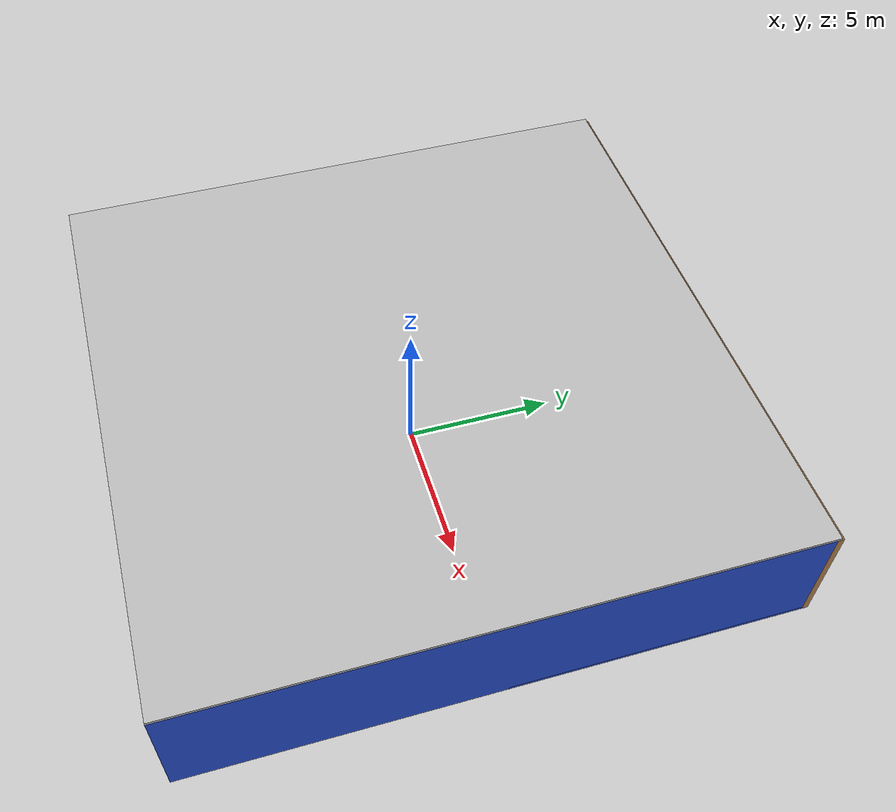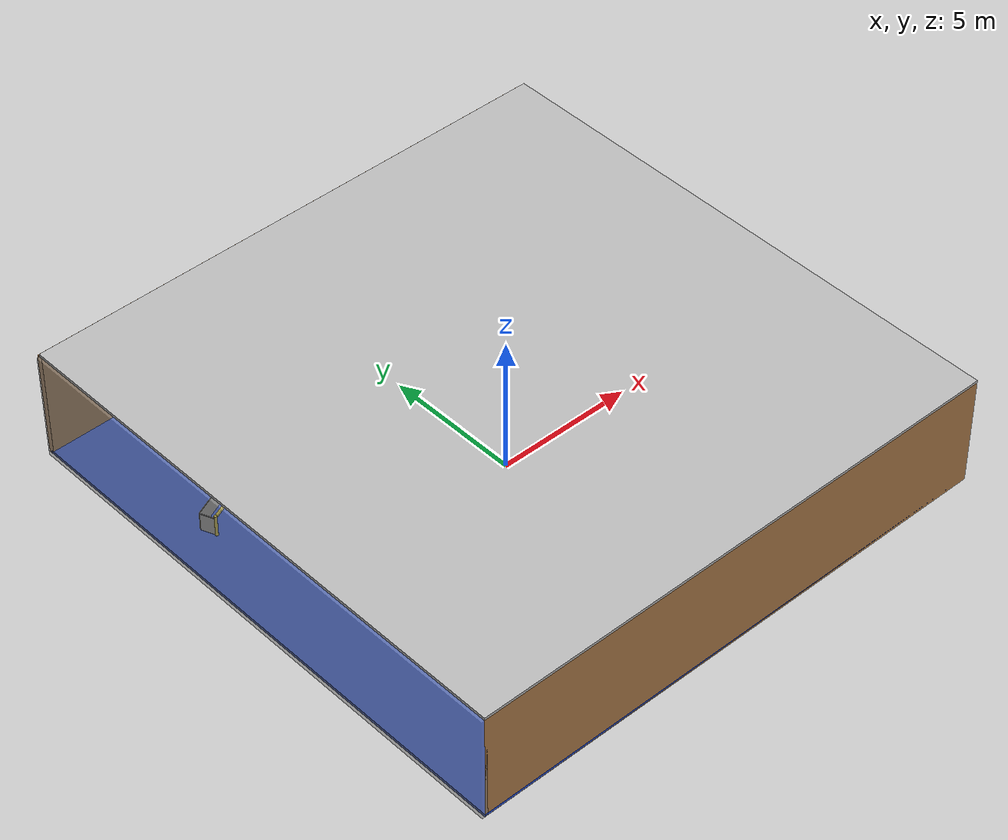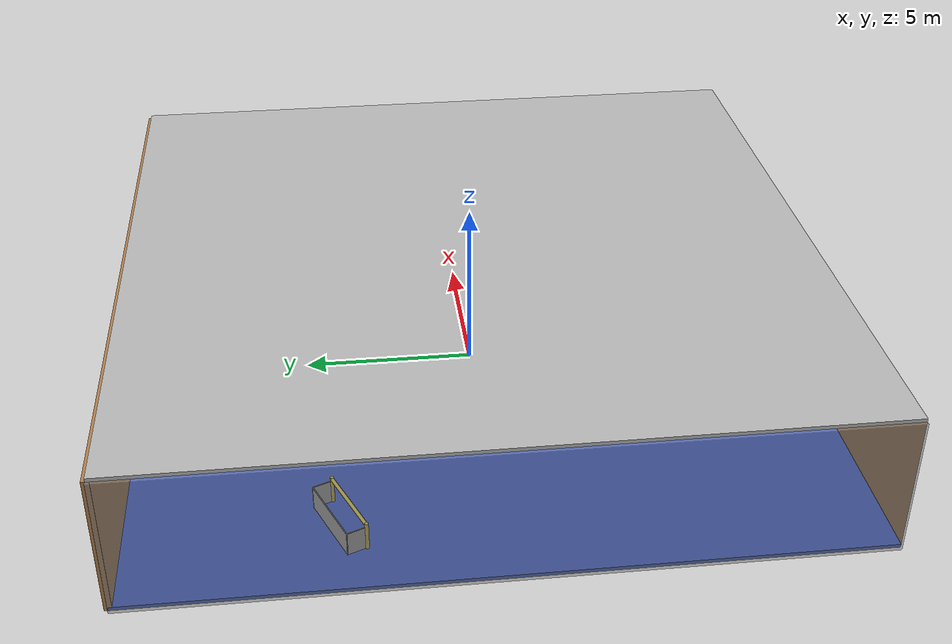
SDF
<sdf version="1.4">
 <world name="default">
  <physics type="ode">
   <max_step_size>0.001</max_step_size>
   <real_time_factor>1</real_time_factor>
   <real_time_update_rate>1000</real_time_update_rate>
   <gravity>0 0 -9.8</gravity>
  </physics>
  <scene><ambient>0.4 0.4 0.4 1</ambient><background>0.7 0.7 0.7 1</background><shadows>1</shadows></scene>
  <model name="Surrounding">
   <static>1</static>
   <link name="Ceiling">
    <collision name="Ceiling_Collision"><geometry><box><size>20 20 0.1</size></box></geometry></collision>
    <visual name="Ceiling_Visual">
     <geometry><box><size>20 20 0.1</size></box></geometry>
     <material>
      <script><uri>file://media/materials/scripts/gazebo.material</uri><name>Gazebo/CloudySky</name></script>
     </material>
    </visual>
    <pose>0 0 4.05 0 0 0</pose>
   </link>
   <link name="Wall_South">
    <collision name="Wall_South_Collision">
     <geometry><box><size>20 0 4</size></box></geometry>
     <pose>0 0 2 0 -0 0</pose>
    </collision>
    <visual name="Wall_South_Visual">
     <pose>0 0 2 0 -0 0</pose>
     <geometry><box><size>20 0 4</size></box></geometry>
     <material>
      <script><uri>file://media/materials/scripts/gazebo.material</uri><name>Gazebo/Wood</name></script>
     </material>
    </visual>
    <velocity_decay><linear>0</linear><angular>0</angular></velocity_decay>
    <pose>0 -10 0 0 -0 0</pose>
   </link>
   <link name="Wall_East">
    <collision name="Wall_21_Collision">
     <geometry><box><size>20 0 4</size></box></geometry>
     <pose>0 0 2 0 -0 0</pose>
    </collision>
    <visual name="Wall_21_Visual">
     <pose>0 0 2 0 -0 0</pose>
     <geometry><box><size>20 0 4</size></box></geometry>
     <material>
      <script><uri>file://media/materials/scripts/gazebo.material</uri><name>Gazebo/BlueGlow</name></script>
     </material>
    </visual>
    <velocity_decay><linear>0</linear><angular>0</angular></velocity_decay>
    <pose>10 0 0 0 -0 1.5708</pose>
   </link>
   <link name="Wall_North">
    <collision name="Wall_22_Collision">
     <geometry><box><size>20 0.2 4</size></box></geometry>
     <pose>0 0 2 0 -0 0</pose>
    </collision>
    <visual name="Wall_22_Visual">
     <pose>0 0 2 0 -0 0</pose>
     <geometry><box><size>20 0.2 4</size></box></geometry>
     <material>
      <script><uri>file://media/materials/scripts/gazebo.material</uri><name>Gazebo/WoodPallet</name></script>
     </material>
    </visual>
    <velocity_decay><linear>0</linear><angular>0</angular></velocity_decay>
    <pose>0 10 0 0 -0 0</pose>
   </link>
   <link name="Wall_West">
    <collision name="Wall_23_Collision">
     <geometry><box><size>20 0.2 4</size></box></geometry>
     <pose>0 0 2 0 -0 0</pose>
    </collision>
    <visual name="Wall_23_Visual">
     <pose>0 0 2 0 -0 0</pose>
     <geometry><box><size>20 0.2 4</size></box></geometry>
     <material>
      <script><uri>file://media/materials/scripts/gazebo.material</uri><name>Gazebo/GreyTransparent</name></script>
     </material>
    </visual>
    <velocity_decay><linear>0</linear><angular>0</angular></velocity_decay>
    <pose>-10 0 0 0 0 -1.5708</pose>
   </link>
   <link name="Ground_link">
    <collision name="collision">
     <pose>0 0 .05 0 -0 0</pose>
     <geometry><box><size>20 20 0.1</size></box></geometry>
    </collision>
    <visual name="visual">
     <pose>0 0 .05 0 -0 0</pose>
     <geometry><box><size>20 20 0.1</size></box></geometry>
     <material>
      <script><uri>file://media/materials/scripts/gazebo.material</uri><name>Gazebo/BlueLaser</name></script>
     </material>
    </visual>
   </link>
   <static>1</static>
  </model>
  <spherical_coordinates>
   <surface_model>EARTH_WGS84</surface_model>
   <latitude_deg>0</latitude_deg>
   <longitude_deg>0</longitude_deg>
   <elevation>0</elevation>
   <heading_deg>0</heading_deg>
  </spherical_coordinates>
  <light name="lightball_0" type="diffuse">
   <diffuse>0.8 0.8 0.8 1</diffuse>
   <specular>0.2 0.2 0.2 1</specular>
   <attenuation>
    <range>100</range>
    <constant>0.7</constant>
    <linear>0.01</linear>
    <quadratic>0.001</quadratic>
   </attenuation>
   <direction>-0.5 0.1 -0.9</direction>
   <pose>-7.66346354118 -9.99573454465 0.783677686239 0 0 0</pose>
  </light>
  <light name="lightball_1" type="diffuse">
   <diffuse>0.8 0.8 0.8 1</diffuse>
   <specular>0.2 0.2 0.2 1</specular>
   <attenuation>
    <range>100</range>
    <constant>0.7</constant>
    <linear>0.01</linear>
    <quadratic>0.001</quadratic>
   </attenuation>
   <direction>-0.5 0.1 -0.9</direction>
   <pose>-7.96716401729 -9.01924006393 0.572560128428 0 0 0</pose>
  </light>
  <light name="lightball_2" type="diffuse">
   <diffuse>0.8 0.8 0.8 1</diffuse>
   <specular>0.2 0.2 0.2 1</specular>
   <attenuation>
    <range>100</range>
    <constant>0.7</constant>
    <linear>0.01</linear>
    <quadratic>0.001</quadratic>
   </attenuation>
   <direction>-0.5 0.1 -0.9</direction>
   <pose>5.51324667051 -8.74318777678 3.80368643608 0 0 0</pose>
  </light>
  <light name="lightball_3" type="diffuse">
   <diffuse>0.8 0.8 0.8 1</diffuse>
   <specular>0.2 0.2 0.2 1</specular>
   <attenuation>
    <range>100</range>
    <constant>0.7</constant>
    <linear>0.01</linear>
    <quadratic>0.001</quadratic>
   </attenuation>
   <direction>-0.5 0.1 -0.9</direction>
   <pose>-7.6004352423 4.15982595632 3.7263188006 0 0 0</pose>
  </light>
  <light name="lightball_4" type="diffuse">
   <diffuse>0.8 0.8 0.8 1</diffuse>
   <specular>0.2 0.2 0.2 1</specular>
   <attenuation>
    <range>100</range>
    <constant>0.7</constant>
    <linear>0.01</linear>
    <quadratic>0.001</quadratic>
   </attenuation>
   <direction>-0.5 0.1 -0.9</direction>
   <pose>2.62072933483 4.75842760793 1.92303882267 0 0 0</pose>
  </light>
  <light name="lightball_5" type="diffuse">
   <diffuse>0.8 0.8 0.8 1</diffuse>
   <specular>0.2 0.2 0.2 1</specular>
   <attenuation>
    <range>100</range>
    <constant>0.7</constant>
    <linear>0.01</linear>
    <quadratic>0.001</quadratic>
   </attenuation>
   <direction>-0.5 0.1 -0.9</direction>
   <pose>9.67089463721 5.64919694932 3.69520356757 0 0 0</pose>
  </light>
  <light name="lightball_6" type="diffuse">
   <diffuse>0.8 0.8 0.8 1</diffuse>
   <specular>0.2 0.2 0.2 1</specular>
   <attenuation>
    <range>100</range>
    <constant>0.7</constant>
    <linear>0.01</linear>
    <quadratic>0.001</quadratic>
   </attenuation>
   <direction>-0.5 0.1 -0.9</direction>
   <pose>-2.21349045402 4.52355798426 0.91437198649 0 0 0</pose>
  </light>
  <light name="lightball_7" type="diffuse">
   <diffuse>0.8 0.8 0.8 1</diffuse>
   <specular>0.2 0.2 0.2 1</specular>
   <attenuation>
    <range>100</range>
    <constant>0.7</constant>
    <linear>0.01</linear>
    <quadratic>0.001</quadratic>
   </attenuation>
   <direction>-0.5 0.1 -0.9</direction>
   <pose>1.49515878375 8.73196620566 1.1543635947 0 0 0</pose>
  </light>
  <include>
   <uri>model://robocup_3Dsim_goal</uri>
   <pose>-7.59413999846 4.01977573304 0 0 0 1.96741876157</pose>
  </include>
  <include><uri>model://cabinet</uri><pose>-3.34134865502 -6.40735407126 0 0 0 0.0496282774699</pose></include>
  <include>
   <uri>model://robocup_3Dsim_goal</uri>
   <pose>-2.08094610003 -7.07372988651 0 0 0 1.04611199769</pose>
  </include>
  <include><uri>model://table</uri><pose>3.50142282727 2.58591673152 0 0 0 3.13895804601</pose></include>
  <include><uri>model://cabinet</uri><pose>7.36693860883 -4.28633152566 0 0 0 0.40278568358</pose></include>
  <include><uri>model://table</uri><pose>8.59901064808 7.37541379863 0 0 0 2.98126257902</pose></include>
 </world>
</sdf>

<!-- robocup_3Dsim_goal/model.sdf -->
<sdf version="1.5">
  <model name="robocup_3d_goal">
    <static>true</static>
    <link name="left_post">
      <pose>0 1.05 0.45 0 0 0</pose>
      <collision name="collision">
        <geometry>
          <cylinder>
            <radius>0.05</radius>
            <length>0.9</length>
          </cylinder>
        </geometry>
      </collision>
      <visual name="visual">
        <geometry>
          <cylinder>
            <radius>0.05</radius>
            <length>0.9</length>
          </cylinder>
        </geometry>
        <material>
          <script>
            <uri>file://media/materials/scripts/gazebo.material</uri>
            <name>Gazebo/ZincYellow</name>
          </script>
        </material>
      </visual>
    </link>
    <link name="left_support_horiz_lower">
      <pose>0.30 1.05 0.01 0 0 0</pose>
      <collision name="collision">
        <geometry>
          <box>
            <size>0.50 0.02 0.02</size>
          </box>
        </geometry>
      </collision>
      <visual name="visual">
        <geometry>
          <box>
            <size>0.50 0.02 0.02</size>
          </box>
        </geometry>
        <material>
          <script>
            <uri>file://media/materials/scripts/gazebo.material</uri>
            <name>Gazebo/White</name>
          </script>
        </material>
      </visual>
    </link>
    <link name="left_support_horiz_upper">
      <pose>0.30 1.05 0.79 0 0 0</pose>
      <collision name="collision">
        <geometry>
          <box>
            <size>0.50 0.02 0.02</size>
          </box>
        </geometry>
      </collision>
      <visual name="visual">
        <geometry>
          <box>
            <size>0.50 0.02 0.02</size>
          </box>
        </geometry>
        <material>
          <script>
            <uri>file://media/materials/scripts/gazebo.material</uri>
            <name>Gazebo/White</name>
          </script>
        </material>
      </visual>
    </link>
    <link name="left_support_vertical">
      <pose>0.56 1.05 0.4 0 1.5708 0</pose>
      <collision name="collision">
        <geometry>
          <box>
            <size>0.80 0.02 0.02</size>
          </box>
        </geometry>
      </collision>
      <visual name="visual">
        <geometry>
          <box>
            <size>0.80 0.02 0.02</size>
          </box>
        </geometry>
        <material>
          <script>
            <uri>file://media/materials/scripts/gazebo.material</uri>
            <name>Gazebo/White</name>
          </script>
        </material>
      </visual>
    </link>
    <link name="right_support_horiz_lower">
      <pose>0.30 -1.05 0.01 0 0 0</pose>
      <collision name="collision">
        <geometry>
          <box>
            <size>0.50 0.02 0.02</size>
          </box>
        </geometry>
      </collision>
      <visual name="visual">
        <geometry>
          <box>
            <size>0.50 0.02 0.02</size>
          </box>
        </geometry>
        <material>
          <script>
            <uri>file://media/materials/scripts/gazebo.material</uri>
            <name>Gazebo/White</name>
          </script>
        </material>
      </visual>
    </link>
    <link name="right_support_horiz_upper">
      <pose>0.30 -1.05 0.79 0 0 0</pose>
      <collision name="collision">
        <geometry>
          <box>
            <size>0.50 0.02 0.02</size>
          </box>
        </geometry>
      </collision>
      <visual name="visual">
        <geometry>
          <box>
            <size>0.50 0.02 0.02</size>
          </box>
        </geometry>
        <material>
          <script>
            <uri>file://media/materials/scripts/gazebo.material</uri>
            <name>Gazebo/White</name>
          </script>
        </material>
      </visual>
    </link>
    <link name="right_support_vertical">
      <pose>0.56 -1.05 0.4 0 1.5708 0</pose>
      <collision name="collision">
        <geometry>
          <box>
            <size>0.80 0.02 0.02</size>
          </box>
        </geometry>
      </collision>
      <visual name="visual">
        <geometry>
          <box>
            <size>0.80 0.02 0.02</size>
          </box>
        </geometry>
        <material>
          <script>
            <uri>file://media/materials/scripts/gazebo.material</uri>
            <name>Gazebo/White</name>
          </script>
        </material>
      </visual>
    </link>
    <link name="center_support_horiz_lower">
      <pose>0.56 0 0.01 0 1.5708 0</pose>
      <collision name="collision">
        <geometry>
          <box>
            <size>0.02 2.08 0.02</size>
          </box>
        </geometry>
      </collision>
      <visual name="visual">
        <geometry>
          <box>
            <size>0.02 2.08 0.02</size>
          </box>
        </geometry>
        <material>
          <script>
            <uri>file://media/materials/scripts/gazebo.material</uri>
            <name>Gazebo/White</name>
          </script>
        </material>
      </visual>
    </link>
    <link name="center_support_horiz_upper">
      <pose>0.56 0 0.79 0 1.5708 0</pose>
      <collision name="collision">
        <geometry>
          <box>
            <size>0.02 2.08 0.02</size>
          </box>
        </geometry>
      </collision>
      <visual name="visual">
        <geometry>
          <box>
            <size>0.02 2.08 0.02</size>
          </box>
        </geometry>
        <material>
          <script>
            <uri>file://media/materials/scripts/gazebo.material</uri>
            <name>Gazebo/White</name>
          </script>
        </material>
      </visual>
    </link>
    <link name="right_post">
      <pose>0 -1.05 0.45 0 0 0</pose>
      <collision name="collision">
        <geometry>
          <cylinder>
            <radius>0.05</radius>
            <length>0.9</length>
          </cylinder>
        </geometry>
      </collision>
      <visual name="visual">
        <geometry>
          <cylinder>
            <radius>0.05</radius>
            <length>0.9</length>
          </cylinder>
        </geometry>
        <material>
          <script>
            <uri>file://media/materials/scripts/gazebo.material</uri>
            <name>Gazebo/ZincYellow</name>
          </script>
        </material>
      </visual>
    </link>
    <link name="crossbar">
      <pose>0 0 0.85 1.57 1.57 0</pose>
      <collision name="collision">
        <geometry>
          <cylinder>
            <radius>0.05</radius>
            <length>2.0</length>
          </cylinder>
        </geometry>
      </collision>
      <visual name="visual">
        <geometry>
          <cylinder>
            <radius>0.05</radius>
            <length>2.0</length>
          </cylinder>
        </geometry>
        <material>
          <script>
            <uri>file://media/materials/scripts/gazebo.material</uri>
            <name>Gazebo/ZincYellow</name>
          </script>
        </material>
      </visual>
    </link>
    <link name="center_net">
      <pose>0.56 0 0.40 0 0 0</pose>
      <collision name="collision">
        <geometry>
          <box>
            <size>0.01 2.1 0.80</size>
          </box>
        </geometry>
      </collision>
      <visual name="visual">
        <geometry>
          <box>
            <size>0.01 2.1 0.80</size>
          </box>
        </geometry>
        <material>
          <script>
            <uri>model://../model_source/models/robocup09_spl_field/materials/scripts/</uri>
            <uri>model://../model_source/models/robocup09_spl_field/materials/textures/</uri>
            <name>RoboCup/Net</name>
          </script>
        </material>
      </visual>
    </link>
    <link name="left_net">
      <pose>0.30 1.05 0.40 0 0 0</pose>
      <collision name="collision">
        <geometry>
          <box>
            <size>0.50 0.01 0.76</size>
          </box>
        </geometry>
      </collision>
      <visual name="visual">
        <geometry>
          <box>
            <size>0.50 0.01 0.76</size>
          </box>
        </geometry>
        <material>
          <script>
            <uri>model://../model_source/models/robocup09_spl_field/materials/scripts/</uri>
            <uri>model://../model_source/models/robocup09_spl_field/materials/textures/</uri>
            <name>RoboCup/Net</name>
          </script>
        </material>
      </visual>
    </link>
    <link name="right_net">
      <pose>0.30 -1.05 0.40 0 0 0</pose>
      <collision name="collision">
        <geometry>
          <box>
            <size>0.50 0.01 0.76</size>
          </box>
        </geometry>
      </collision>
      <visual name="visual">
        <geometry>
          <box>
            <size>0.50 0.01 0.76</size>
          </box>
        </geometry>
        <material>
          <script>
            <uri>model://../model_source/models/robocup09_spl_field/materials/scripts/</uri>
            <uri>model://../model_source/models/robocup09_spl_field/materials/textures/</uri>
            <name>RoboCup/Net</name>
          </script>
        </material>
      </visual>
    </link>
  </model>
</sdf>

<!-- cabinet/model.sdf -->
<sdf version="1.5">
  <model name="cabinet">
    <static>true</static>
    <link name="cabinet_bottom_plate">
      <inertial>
        <pose>0 0 -1 0 0 0</pose>
        <inertia>
          <ixx>2.050000</ixx>
          <ixy>0</ixy>
          <ixz>0</ixz>
          <iyy>2.050000</iyy>
          <iyz>0</iyz>
          <izz>2.050000</izz>
        </inertia>
        <mass>25.000000</mass>
      </inertial>
      <collision name="cabinet_bottom_plate_geom">
        <pose>0 0 0.010000 0 0 0</pose>
        <geometry>
          <box>
            <size>0.450000 0.450000 0.020000</size>
          </box>
        </geometry>
      </collision>
      <visual name="cabinet_bottom_plate_geom_visual">
        <pose>0 0 0.010000 0 0 0</pose>
        <geometry>
          <box>
            <size>0.450000 0.450000 0.020000</size>
          </box>
        </geometry>
        <material>
          <script>
            <uri>model://media/materials/scripts/gazebo.material</uri>
            <name>Gazebo/Wood</name>
          </script>
        </material>
      </visual>
      <collision name="cabinet_bottom_plate_geom_cabinet_back_plate">
        <pose>0.235000 0 0.510000 0 0 0</pose>
        <geometry>
          <box>
            <size>0.020000 0.450000 1.020000</size>
          </box>
        </geometry>
      </collision>
      <visual name="cabinet_bottom_plate_geom_cabinet_back_plate_visual">
        <pose>0.235000 0 0.510000 0 0 0</pose>
        <geometry>
          <box>
            <size>0.020000 0.450000 1.020000</size>
          </box>
        </geometry>
        <material>
          <script>
            <uri>model://media/materials/scripts/gazebo.material</uri>
            <name>Gazebo/Wood</name>
          </script>
        </material>
      </visual>
      <collision name="cabinet_bottom_plate_geom_cabinet_left_plate">
        <pose>0 0.235000 0.510000 0 0 0</pose>
        <geometry>
          <box>
            <size>0.450000 0.020000 1.020000</size>
          </box>
        </geometry>
      </collision>
      <visual name="cabinet_bottom_plate_geom_cabinet_left_plate_visual">
        <pose>0 0.235000 0.510000 0 0 0</pose>
        <geometry>
          <box>
            <size>0.450000 0.020000 1.020000</size>
          </box>
        </geometry>
        <material>
          <script>
            <uri>model://media/materials/scripts/gazebo.material</uri>
            <name>Gazebo/Wood</name>
          </script>
        </material>
      </visual>
      <collision name="cabinet_bottom_plate_geom_cabinet_middle_plate">
        <pose>0 0 0.510000 0 0 0</pose>
        <geometry>
          <box>
            <size>0.450000 0.450000 0.020000</size>
          </box>
        </geometry>
      </collision>
      <visual name="cabinet_bottom_plate_geom_cabinet_middle_plate_visual">
        <pose>0 0 0.510000 0 0 0</pose>
        <geometry>
          <box>
            <size>0.450000 0.450000 0.020000</size>
          </box>
        </geometry>
        <material>
          <script>
            <uri>model://media/materials/scripts/gazebo.material</uri>
            <name>Gazebo/Wood</name>
          </script>
        </material>
      </visual>
      <collision name="cabinet_bottom_plate_geom_cabinet_right_plate">
        <pose>0 -0.235000 0.510000 0 0 0</pose>
        <geometry>
          <box>
            <size>0.450000 0.020000 1.020000</size>
          </box>
        </geometry>
      </collision>
      <visual name="cabinet_bottom_plate_geom_cabinet_right_plate_visual">
        <pose>0 -0.235000 0.510000 0 0 0</pose>
        <geometry>
          <box>
            <size>0.450000 0.020000 1.020000</size>
          </box>
        </geometry>
        <material>
          <script>
            <uri>model://media/materials/scripts/gazebo.material</uri>
            <name>Gazebo/Wood</name>
          </script>
        </material>
      </visual>
      <collision name="cabinet_bottom_plate_geom_cabinet_top_plate">
        <pose>0 0 1.010000 0 0 0</pose>
        <geometry>
          <box>
            <size>0.450000 0.450000 0.020000</size>
          </box>
        </geometry>
      </collision>
      <visual name="cabinet_bottom_plate_geom_cabinet_top_plate_visual">
        <pose>0 0 1.010000 0 0 0</pose>
        <geometry>
          <box>
            <size>0.450000 0.450000 0.020000</size>
          </box>
        </geometry>
        <material>
          <script>
            <uri>model://media/materials/scripts/gazebo.material</uri>
            <name>Gazebo/Wood</name>
          </script>
        </material>
      </visual>
    </link>
  </model>
</sdf>

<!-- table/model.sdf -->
<sdf version="1.5">
  <model name="table">
    <static>true</static>
    <link name="link">
      <collision name="surface">
        <pose>0 0 1.0 0 0 0</pose>
        <geometry>
          <box>
            <size>1.5 0.8 0.03</size>
          </box>
        </geometry>
        <surface>
          <friction>
            <ode>
              <mu>0.6</mu>
              <mu2>0.6</mu2>
            </ode>
          </friction>
        </surface>
      </collision>
      <visual name="visual1">
        <pose>0 0 1.0 0 0 0</pose>
        <geometry>
          <box>
            <size>1.5 0.8 0.03</size>
          </box>
        </geometry>
        <material>
          <script>
            <uri>model://media/materials/scripts/gazebo.material</uri>
            <name>Gazebo/Wood</name>
          </script>
        </material>
      </visual>
      <collision name="front_left_leg">
        <pose>0.68 0.38 0.5 0 0 0</pose>
        <geometry>
          <cylinder>
            <radius>0.02</radius>
            <length>1.0</length>
          </cylinder>
        </geometry>
      </collision>
      <visual name="front_left_leg">
        <pose>0.68 0.38 0.5 0 0 0</pose>
        <geometry>
          <cylinder>
            <radius>0.02</radius>
            <length>1.0</length>
          </cylinder>
        </geometry>
        <material>
          <script>
            <uri>model://media/materials/scripts/gazebo.material</uri>
            <name>Gazebo/Grey</name>
          </script>
        </material>
      </visual>
      <collision name="front_right_leg">
        <pose>0.68 -0.38 0.5 0 0 0</pose>
        <geometry>
          <cylinder>
            <radius>0.02</radius>
            <length>1.0</length>
          </cylinder>
        </geometry>
      </collision>
      <visual name="front_right_leg">
        <pose>0.68 -0.38 0.5 0 0 0</pose>
        <geometry>
          <cylinder>
            <radius>0.02</radius>
            <length>1.0</length>
          </cylinder>
        </geometry>
        <material>
          <script>
            <uri>model://media/materials/scripts/gazebo.material</uri>
            <name>Gazebo/Grey</name>
          </script>
        </material>
      </visual>
      <collision name="back_right_leg">
        <pose>-0.68 -0.38 0.5 0 0 0</pose>
        <geometry>
          <cylinder>
            <radius>0.02</radius>
            <length>1.0</length>
          </cylinder>
        </geometry>
      </collision>
      <visual name="back_right_leg">
        <pose>-0.68 -0.38 0.5 0 0 0</pose>
        <geometry>
          <cylinder>
            <radius>0.02</radius>
            <length>1.0</length>
          </cylinder>
        </geometry>
        <material>
          <script>
            <uri>model://media/materials/scripts/gazebo.material</uri>
            <name>Gazebo/Grey</name>
          </script>
        </material>
      </visual>
      <collision name="back_left_leg">
        <pose>-0.68 0.38 0.5 0 0 0</pose>
        <geometry>
          <cylinder>
            <radius>0.02</radius>
            <length>1.0</length>
          </cylinder>
        </geometry>
      </collision>
      <visual name="back_left_leg">
        <pose>-0.68 0.38 0.5 0 0 0</pose>
        <geometry>
          <cylinder>
            <radius>0.02</radius>
            <length>1.0</length>
          </cylinder>
        </geometry>
        <material>
          <script>
            <uri>model://media/materials/scripts/gazebo.material</uri>
            <name>Gazebo/Grey</name>
          </script>
        </material>
      </visual>
    </link>
  </model>
</sdf>
